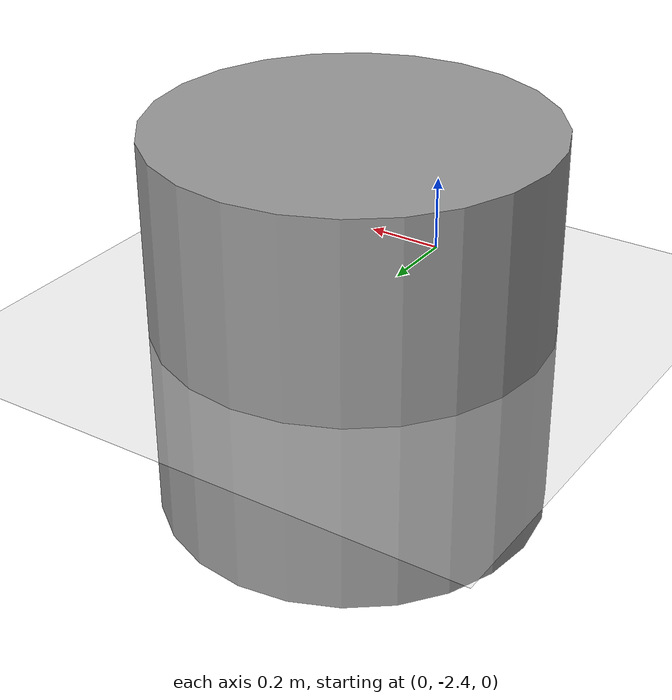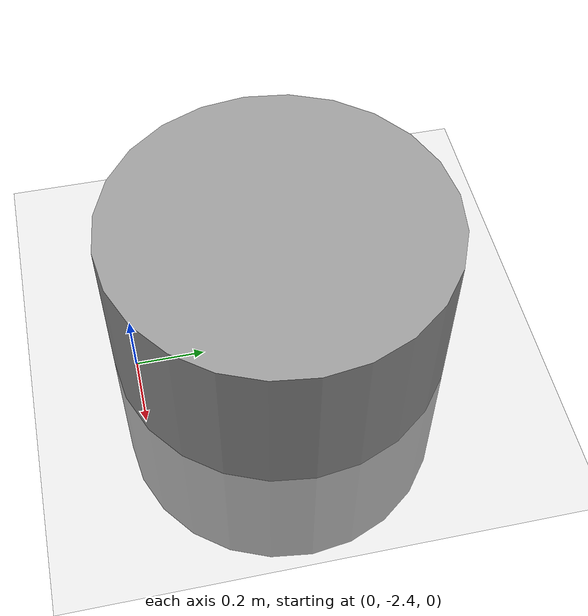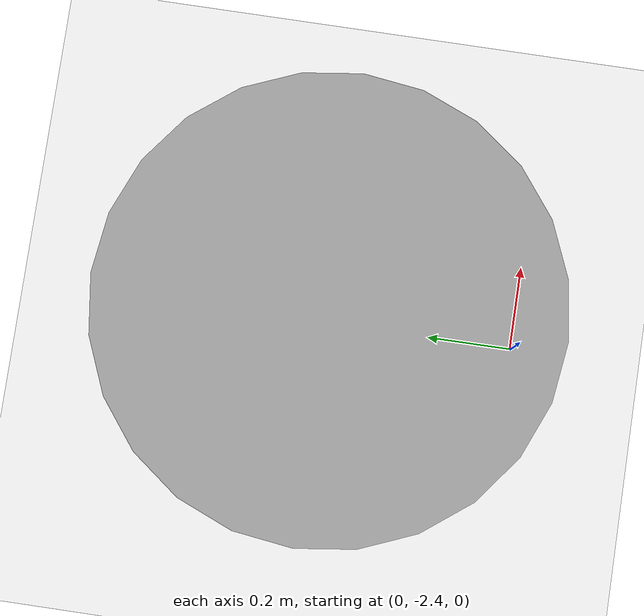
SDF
<?xml version="1.0" ?>
<sdf version="1.4">
    <world name="default">
        <include>
            <uri>model://ground_plane</uri>
        </include>

        <include>
            <uri>model://sun</uri>
        </include>

    <model name='tmp'>
      <link name='link_0'>
        <inertial>
          <mass>1</mass>
          <inertia>
            <ixx>0.145833</ixx>
            <ixy>0</ixy>
            <ixz>0</ixz>
            <iyy>0.145833</iyy>
            <iyz>0</iyz>
            <izz>0.125</izz>
          </inertia>
        </inertial>
        <pose frame=''>0 3e-06 0 0 -0 0</pose>
        <visual name='visual'>
          <pose frame=''>0 0 0 0 -0 0</pose>
          <geometry>
            <cylinder>
              <radius>0.5</radius>
              <length>1</length>
            </cylinder>
          </geometry>
          <material>
            <lighting>1</lighting>
            <script>
              <uri>file://media/materials/scripts/gazebo.material</uri>
              <name>Gazebo/Grey</name>
            </script>
          </material>
          <transparency>0</transparency>
          <cast_shadows>1</cast_shadows>
        </visual>
        <collision name='collision'>
          <laser_retro>0</laser_retro>
          <max_contacts>10</max_contacts>
          <pose frame=''>0 0 0 0 -0 0</pose>
          <geometry>
            <cylinder>
              <radius>0.5</radius>
              <length>1</length>
            </cylinder>
          </geometry>
          <surface>
            <friction>
              <ode>
                <mu>1</mu>
                <mu2>1</mu2>
                <fdir1>0 0 0</fdir1>
                <slip1>0</slip1>
                <slip2>0</slip2>
              </ode>
              <torsional>
                <coefficient>1</coefficient>
                <patch_radius>0</patch_radius>
                <surface_radius>0</surface_radius>
                <use_patch_radius>1</use_patch_radius>
                <ode>
                  <slip>0</slip>
                </ode>
              </torsional>
            </friction>
            <bounce>
              <restitution_coefficient>0</restitution_coefficient>
              <threshold>1e+06</threshold>
            </bounce>
            <contact>
              <collide_without_contact>0</collide_without_contact>
              <collide_without_contact_bitmask>1</collide_without_contact_bitmask>
              <collide_bitmask>1</collide_bitmask>
              <ode>
                <soft_cfm>0</soft_cfm>
                <soft_erp>0.2</soft_erp>
                <kp>1e+13</kp>
                <kd>1</kd>
                <max_vel>0.01</max_vel>
                <min_depth>0</min_depth>
              </ode>
              <bullet>
                <split_impulse>1</split_impulse>
                <split_impulse_penetration_threshold>-0.01</split_impulse_penetration_threshold>
                <soft_cfm>0</soft_cfm>
                <soft_erp>0.2</soft_erp>
                <kp>1e+13</kp>
                <kd>1</kd>
              </bullet>
            </contact>
          </surface>
        </collision>
        <self_collide>0</self_collide>
        <enable_wind>0</enable_wind>
        <kinematic>0</kinematic>
      </link>
      <static>0</static>
      <allow_auto_disable>1</allow_auto_disable>
      <pose frame=''>-0.01915 -1.96395 0 0 -0 0</pose>
    </model>

        <gui fullscreen='0'>
            <camera name="user_camera">
                <pose>5 -4.5 4 0 0.5 2.5</pose>
                <view_controller>orbit</view_controller>
            </camera>
        </gui>
    </world>
</sdf>
